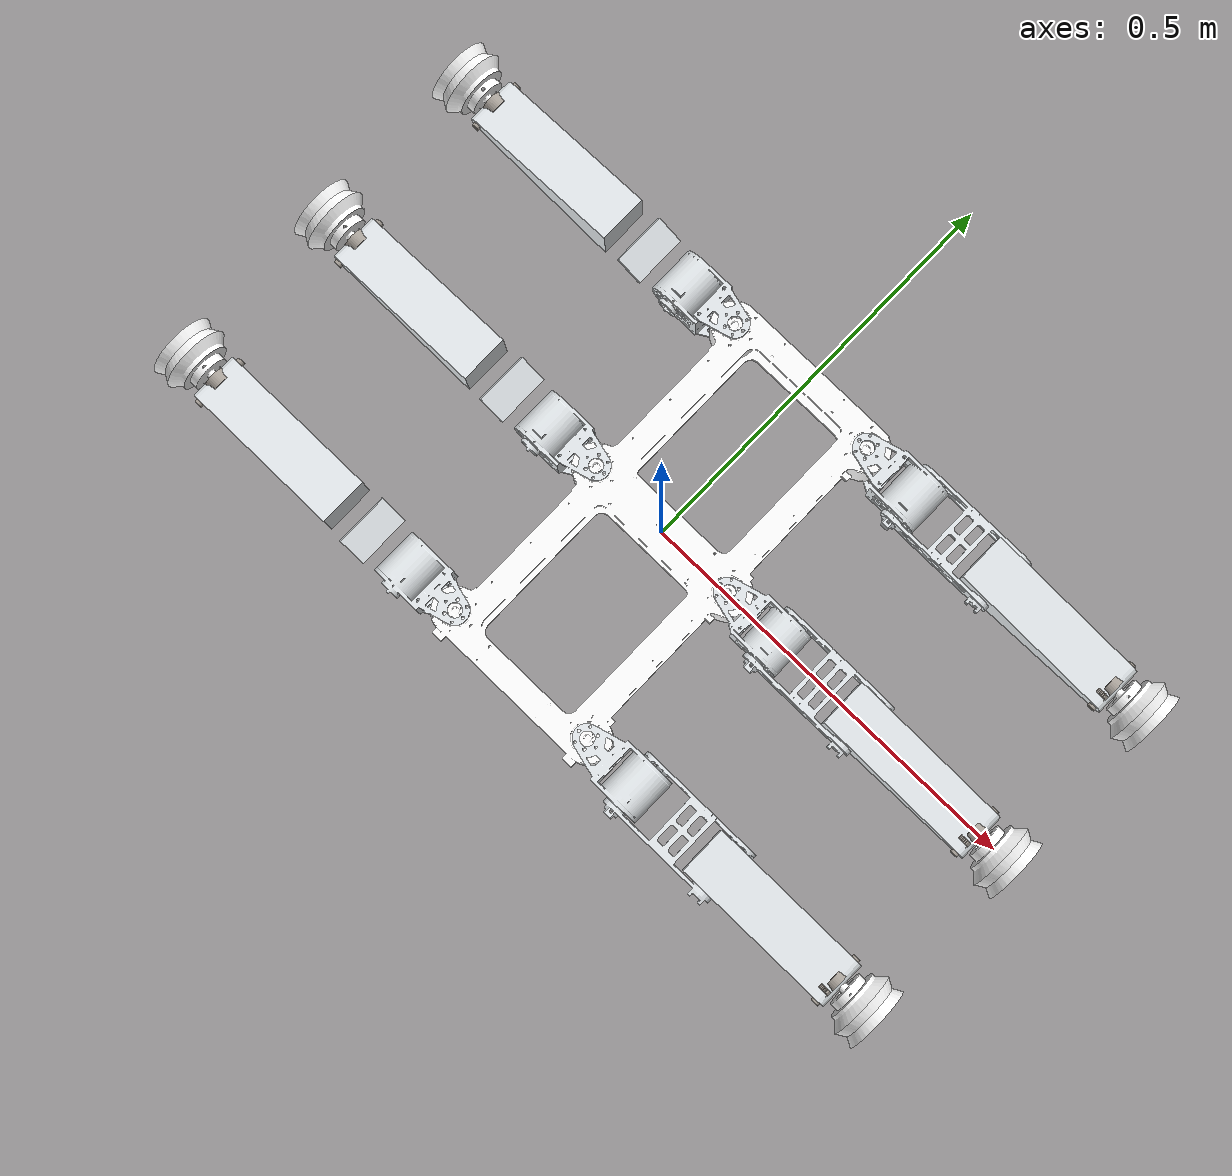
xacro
<?xml version="1.0" encoding="utf-8"?>
<robot xmlns:xacro="http://www.ros.org/wiki/xacro" name="hex_v4">
<xacro:property name="M_PI" value="3.1415926535897931"/>
<xacro:property name="joint_vec" value="5.864"/>
<xacro:macro name="leg" params="xyz rpy suffix rl">
  <link name="l_${suffix}_thigh">
    <inertial>
      <origin xyz="0.064022 0.00096119 0.000579" rpy="0 0 0" />
      <mass value="0.46413" />
      <inertia ixx="0.00019278"
        ixy="-5.2257E-08"
        ixz="-1.4788E-07"
        iyy="0.00018924"
        iyz="2.2903E-08"
        izz="0.00017553" />
    </inertial>
    <visual>
      <origin
        xyz="0 0 0"
        rpy="0 0 0" />
      <geometry>
        <mesh
          filename="package://sim_env/model/hex_v4/meshes/l_${rl}_thigh.STL" />
      </geometry>
      <material
        name="">
        <color
          rgba="0.89804 0.91765 0.92941 1" />
      </material>
    </visual>
    <collision>
      <origin
        xyz="0 0 0"
        rpy="0 0 0" />
      <geometry>
        <box size="0.01 0.01 0.01" />
      </geometry>
    </collision>
  </link>
  <joint
    name="j_${suffix}_thigh"
    type="revolute">
    <origin
      xyz="${xyz}"
      rpy="${rpy}" />
    <parent
      link="body" />
    <child
      link="l_${suffix}_thigh" />
    <axis
      xyz="0 0 1" />
    <limit
      lower="-3"
      upper="3"
      effort="18"
      velocity="${joint_vec}"/>
    <dynamics damping="0.01" friction="0.5" />
  </joint>
  <link
    name="l_${suffix}_knee">
    <inertial>
      <origin
        xyz="0.066501 0.0033817 0.0021901"
        rpy="0 0 0" />
      <mass
        value="0.095847" />
      <inertia
        ixx="1.9167E-05"
        ixy="-1.9727E-07"
        ixz="-4.5905E-09"
        iyy="0.00017199"
        iyz="4.1768E-09"
        izz="0.00016755" />
    </inertial>
    <visual>
      <origin
        xyz="0 0 0"
        rpy="0 0 0" />
      <geometry>
        <mesh
          filename="package://sim_env/model/hex_v4/meshes/l_${rl}_knee.STL" />
      </geometry>
      <material
        name="">
        <color
          rgba="0.89804 0.91765 0.92941 1" />
      </material>
    </visual>
    <collision>
      <origin
        xyz="0.036 0 0"
        rpy="0 0 0" />
      <geometry>
        <box size="0.01 0.01 0.01"/>
      </geometry>
    </collision>
  </link>
  <joint
    name="j_${suffix}_knee"
    type="revolute">
    <origin
      xyz="0.072 0 0"
      rpy="${M_PI/2} 0 0" />
    <parent
      link="l_${suffix}_thigh"/>
    <child
      link="l_${suffix}_knee"/>
    <axis
      xyz="0 0 1" />
    <limit
      lower="-3"
      upper="3"
      effort="18"
      velocity="${joint_vec}" />
    <dynamics damping="0.01" friction="0.5" />
  </joint>
  <link
    name="l_${suffix}_ankle">
    <inertial>
      <origin
        xyz="0.023693 3.1616E-05 -0.00077324"
        rpy="0 0 0" />
      <mass
        value="0.48858" />
      <inertia
        ixx="0.00016687"
        ixy="3.1511E-07"
        ixz="-5.2998E-07"
        iyy="0.00048588"
        iyz="-5.087E-08"
        izz="0.00049222" />
    </inertial>
    <visual>
      <origin
        xyz="0 0 0"
        rpy="0 0 0" />
      <geometry>
        <mesh
          filename="package://sim_env/model/hex_v4/meshes/l_${rl}_ankle.STL" />
      </geometry>
      <material
        name="">
        <color
          rgba="0.89804 0.91765 0.92941 1" />
      </material>
    </visual>
    <collision>
      <origin
        xyz="0 0 0"
        rpy="0 0 0" />
      <geometry>
        <box size="0.01 0.01 0.01"/>
      </geometry>
    </collision>
  </link>
  <joint
    name="j_${suffix}_ankle"
    type="revolute">
    <origin
      xyz="0.13 0 0"
      rpy="0 0 0" />
    <parent
      link="l_${suffix}_knee" />
    <child
      link="l_${suffix}_ankle" />
    <axis
      xyz="0 0 1" />
    <limit
      lower="-3"
      upper="3"
      effort="18"
      velocity="${joint_vec}" />
      <dynamics damping="0" friction="0.5" />
  </joint>
  <link
    name="l_${suffix}_foot">
    <inertial>
      <origin
        xyz="-0.00045734 -3.8425E-06 -0.0013561"
        rpy="0 0 0" />
      <mass
        value="0.028" />
      <inertia
        ixx="3.8123E-06"
        ixy="6.652E-15"
        ixz="7.2428E-09"
        iyy="3.163E-06"
        iyz="-2.2356E-13"
        izz="1.1087E-06" />
    </inertial>
    <visual>
      <origin
        xyz="0 0 0"
        rpy="0 0 0" />
      <geometry>
        <mesh
          filename="package://sim_env/model/hex_v4/meshes/l_${rl}_foot.STL" />
      </geometry>
      <material
        name="">
        <color
          rgba="0.64706 0.61961 0.58824 1" />
      </material>
    </visual>
    <collision>
      <origin
        xyz="0 0 0"
        rpy="0 0 0" />
      <geometry>
        <box size="0.01 0.01 0.01"/>
      </geometry>
    </collision>
  </link>
  <joint
    name="j_${suffix}_foot"
    type="revolute">
    <origin
      xyz="0.17 0 0"
      rpy="0 0 0" />
    <parent
      link="l_${suffix}_ankle" />
    <child
      link="l_${suffix}_foot" />
    <axis
      xyz="0 0 1" />
    <limit
      lower="${-M_PI/2.0}"
      upper="${M_PI/2.0}"
      effort="1"
      velocity="${joint_vec/5.0}"/>
      <dynamics damping="0.0" friction="0.6" />
  </joint>

    <link name="l_${suffix}_ball1">
        <visual><geometry><sphere radius=".004"/></geometry></visual>
        <collision><geometry><sphere radius=".007"/></geometry></collision>
        <inertial>
            <origin xyz="0 0 0" rpy="0 0 0"/>
            <mass value="0.1"/>
            <inertia ixx="1.96e-6" ixy="0.0" ixz="0.0" iyy="1.96e-6"  iyz="0.0" izz="1.96e-6"/>
        </inertial>
    </link>
    <joint name="j_${suffix}_ball1" type="revolute">
        <origin xyz="0.002 0 0" rpy="${-M_PI/2} 0 0"/>
        <parent link="l_${suffix}_foot"/>
        <child link="l_${suffix}_ball1"/>
        <axis xyz="0 0 1"/>
        <limit lower="${-M_PI/12.0}" upper="${M_PI/12.0}" effort="18" velocity="${joint_vec}"/>
        <dynamics damping="0" friction="0.6"/>
    </joint>

    <link name="l_${suffix}_ball2">
        <visual><geometry><sphere radius=".004"/></geometry></visual>
        <collision><geometry><sphere radius=".007"/></geometry></collision>
        <inertial>
            <origin xyz="0 0 0" rpy="0 0 0"/>
            <mass value="0.1"/>
            <inertia ixx="1.96e-6" ixy="0.0" ixz="0.0" iyy="1.96e-6"  iyz="0.0" izz="1.96e-6"/>
        </inertial>
    </link>

    <joint name="j_${suffix}_ball2" type="revolute">
        <origin xyz="0 0 0" rpy="0 ${M_PI/2} 0"/>
        <parent link="l_${suffix}_ball1"/>
        <child link="l_${suffix}_ball2"/>
        <axis xyz="0 1 0"/>
        <limit lower="${-M_PI/12.0}" upper="${M_PI/12.0}" effort="18" velocity="${joint_vec}"/>
        <dynamics damping="0" friction="0.6"/>
    </joint>

  <link
    name="l_${suffix}_suck">
    <inertial>
      <origin
        xyz="-5.3073E-05 8.082E-07 -0.023883"
        rpy="0 0 0" />
      <mass
        value="0.064402" />
      <inertia
        ixx="2.5392E-05"
        ixy="-1.0544E-09"
        ixz="-6.2147E-09"
        iyy="2.5323E-05"
        iyz="9.4676E-11"
        izz="4.2031E-05" />
    </inertial>
    <visual>
      <origin
        xyz="0 0 0"
        rpy="0 0 0" />
      <geometry>
        <mesh
          filename="package://sim_env/model/hex_v4/meshes/l_lf_suck.STL" />
      </geometry>
      <material
        name="">
        <color
          rgba="1 1 1 1" />
      </material>
    </visual>
    <collision>
      <origin
        xyz="0 0 -0.04"
        rpy="0 0 0" />
      <geometry>
        <cylinder radius="0.04" length="0.025" />
      </geometry>
    </collision>
  </link>
  <joint
    name="j_${suffix}_suck"
    type="revolute">
    <origin
      xyz="0 0 0"
      rpy="0 ${M_PI} 0" />
    <parent
      link="l_${suffix}_ball2"/>
    <child
      link="l_${suffix}_suck"/>
    <axis
      xyz="0 0 -1" />
    <limit
      lower="-3"
      upper="3"
      effort="10"
      velocity="${joint_vec}" />
  </joint>

    <transmission name="t_${suffix}_thigh">
        <type>transmission_interface/SimpleTransmission</type>
        <joint name="j_${suffix}_thigh">
        <hardwareInterface>hardware_interface/EffortJointInterface</hardwareInterface>
        </joint>
        <actuator name="m_${suffix}_thigh">
        <hardwareInterface>hardware_interface/EffortJointInterface</hardwareInterface>
        <mechanicalReduction>1</mechanicalReduction>
        </actuator>
    </transmission>
    <transmission name="t_${suffix}_knee">
        <type>transmission_interface/SimpleTransmission</type>
        <joint name="j_${suffix}_knee">
        <hardwareInterface>hardware_interface/EffortJointInterface</hardwareInterface>
        </joint>
        <actuator name="m_${suffix}_knee">
        <hardwareInterface>hardware_interface/EffortJointInterface</hardwareInterface>
        <mechanicalReduction>1</mechanicalReduction>
        </actuator>
    </transmission>
    <transmission name="t_${suffix}_ankle">
        <type>transmission_interface/SimpleTransmission</type>
        <joint name="j_${suffix}_ankle">
        <hardwareInterface>hardware_interface/EffortJointInterface</hardwareInterface>
        </joint>
        <actuator name="m_${suffix}_ankle">
        <hardwareInterface>hardware_interface/EffortJointInterface</hardwareInterface>
        <mechanicalReduction>1</mechanicalReduction>
        </actuator>
    </transmission>
    <transmission name="t_${suffix}_foot">
        <type>transmission_interface/SimpleTransmission</type>
        <joint name="j_${suffix}_foot">
        <hardwareInterface>hardware_interface/EffortJointInterface</hardwareInterface>
        </joint>
        <actuator name="m_${suffix}_foot">
        <hardwareInterface>hardware_interface/EffortJointInterface</hardwareInterface>
        <mechanicalReduction>1</mechanicalReduction>
        </actuator>
    </transmission>
    <transmission name="t_${suffix}_ball1">
        <type>transmission_interface/SimpleTransmission</type>
        <joint name="j_${suffix}_ball1">
        <hardwareInterface>hardware_interface/EffortJointInterface</hardwareInterface>
        </joint>
        <actuator name="m_${suffix}_ball1">
        <hardwareInterface>hardware_interface/EffortJointInterface</hardwareInterface>
        <mechanicalReduction>1</mechanicalReduction>
        </actuator>
    </transmission>
    <transmission name="t_${suffix}_ball2">
        <type>transmission_interface/SimpleTransmission</type>
        <joint name="j_${suffix}_ball2">
        <hardwareInterface>hardware_interface/EffortJointInterface</hardwareInterface>
        </joint>
        <actuator name="m_${suffix}_ball2">
        <hardwareInterface>hardware_interface/EffortJointInterface</hardwareInterface>
        <mechanicalReduction>1</mechanicalReduction>
        </actuator>
    </transmission>
    <gazebo reference="l_${suffix}_suck">
      <mu1>10</mu1>
      <mu2>10</mu2>
      <kp>80000</kp>
      <kd>400</kd>
    </gazebo>

    <gazebo reference="l_${suffix}_suck">
        <sensor name="{suffix}_contacts" type="contact">
            <update_rate>100.0</update_rate>
            <contact>
                <collision>l_${suffix}_suck_collision</collision>
            </contact>
            <plugin name="gazebo_ros_bumper_controller" filename="libgazebo_ros_bumper.so">
                <robotNamespace>/hex_v4</robotNamespace>
                <bumperTopicName>${suffix}_contacts</bumperTopicName>
                <frameName>l_${suffix}_suck</frameName>
            </plugin>
        </sensor>
        <selfCollide>false</selfCollide>
    </gazebo>
</xacro:macro>

<link name="dummy_link"/>
<joint name="dummy_joint" type="fixed">
  <parent link="dummy_link"/>
  <child link="body"/>
  <origin xyz="0 0 0" rpy="0 0 0"/>
</joint>
<link
    name="body">
    <inertial>
      <origin
        xyz="3.3531E-17 0.0058845 0.00075663"
        rpy="0 0 0" />
      <mass
        value="2.4764" />
      <inertia
        ixx="0.0096325"
        ixy="-8.9857E-08"
        ixz="-2.7461E-20"
        iyy="0.0029826"
        iyz="9.7948E-20"
        izz="0.011766" />
    </inertial>
    <visual>
      <origin
        xyz="0 0 0"
        rpy="0 0 0" />
      <geometry>
        <mesh
          filename="package://sim_env/model/hex_v4/meshes/body.STL" />
      </geometry>
      <material
        name="">
        <color
          rgba="1 1 1 1" />
      </material>
    </visual>
    <collision>
      <origin
        xyz="0 0 0"
        rpy="0 0 0" />
      <geometry>
        <box size="0.2 0.44 0.05"/>
      </geometry>
    </collision>
  </link>
<xacro:leg xyz="0.1 0.22 0" rpy="0 0 0" suffix="rf" rl="r"/>
<xacro:leg xyz="0.1 0 0" rpy="0 0 0" suffix="rm" rl="r"/>
<xacro:leg xyz="0.1 -0.22 0" rpy="0 0 0" suffix="rb" rl="r"/>
<xacro:leg xyz="-0.1 0.22 0" rpy="0 0 ${M_PI}" suffix="lf" rl="l"/>
<xacro:leg xyz="-0.1 0 0" rpy="0 0 ${M_PI}" suffix="lm" rl="l"/>
<xacro:leg xyz="-0.1 -0.22 0" rpy="0 0 ${M_PI}" suffix="lb" rl="l"/>
 <gazebo>
    <plugin filename="libgazebo_ros_control.so" name="gazebo_ros_control">
      <robotNamespace>/hex_v4</robotNamespace>
    </plugin>
  </gazebo>
  <!--Run This Command to generate urdf files: rosrun xacro xacro hexapod_model121.xacro > hexapod_model121_gen.urdf -->
</robot>
